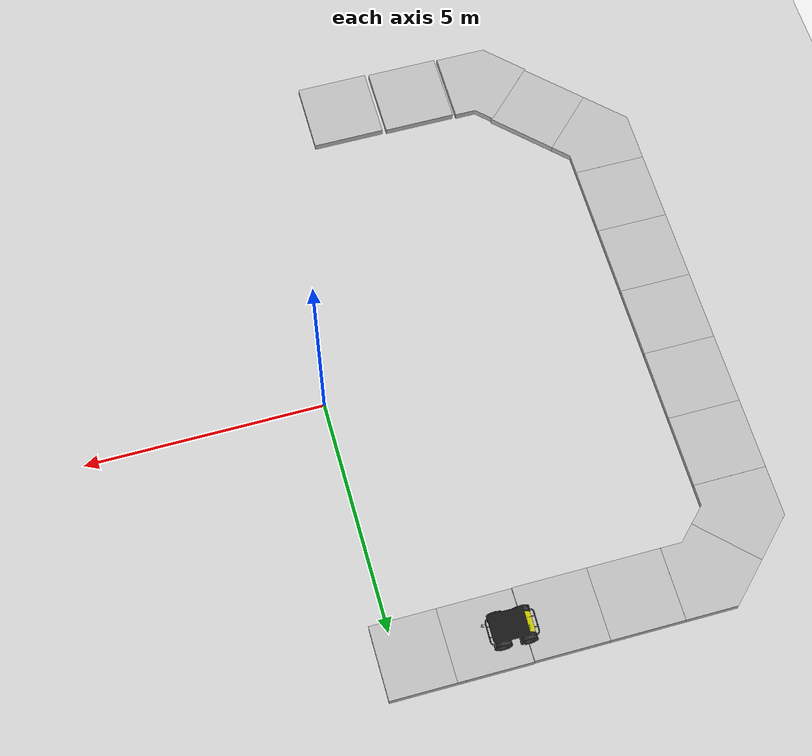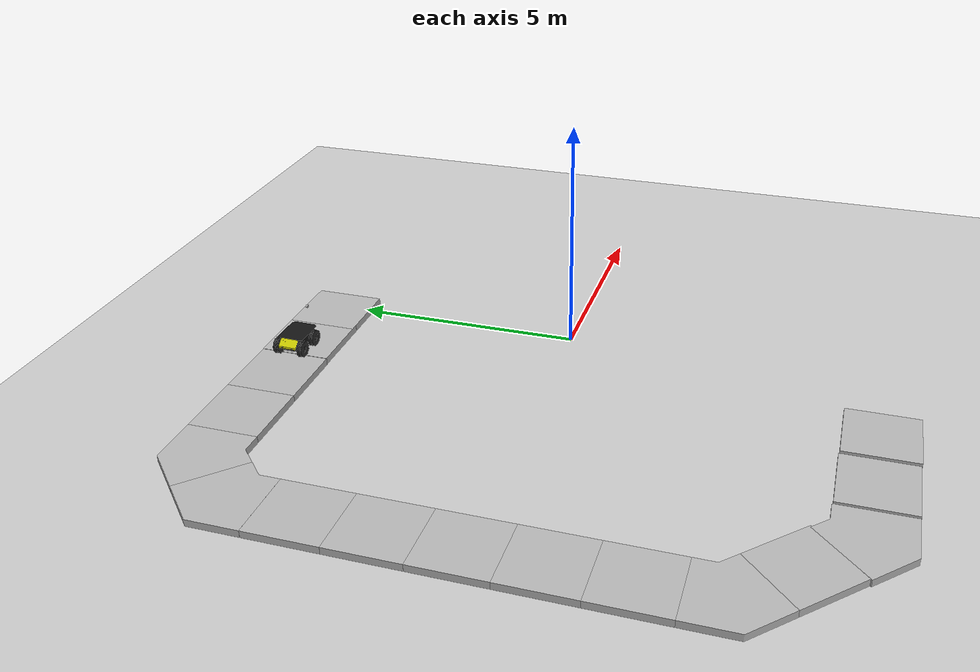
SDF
<sdf version="1.6">
 <world name="default">
  <model name="ground_plane">
   <static>1</static>
   <link name="link">
    <collision name="collision">
     <geometry><plane><normal>0 0 1</normal><size>100 100</size></plane></geometry>
     <surface>
      <contact><collide_bitmask>65535</collide_bitmask></contact>
      <friction><ode><mu>100</mu><mu2>50</mu2></ode></friction>
     </surface>
    </collision>
    <visual name="visual">
     <cast_shadows>0</cast_shadows>
     <geometry><plane><normal>0 0 1</normal><size>100 100</size></plane></geometry>
     <material>
      <script><uri>file://media/materials/scripts/gazebo.material</uri><name>Gazebo/Grey</name></script>
     </material>
    </visual>
   </link>
  </model>
  <model name="walkway_metal_45">
   <static>1</static>
   <link name="link">
    <collision name="collision">
     <pose>0 0.538815 0.076075 0 -0 0</pose>
     <geometry><box><size>1.524 1.07763 0.15215</size></box></geometry>
    </collision>
    <collision name="collision2">
     <pose>0.15793 0.92 0.076075 0 0 -0.785398</pose>
     <geometry><box><size>1.524 1.07763 0.15215</size></box></geometry>
    </collision>
    <visual name="visual">
     <geometry>
      <mesh><scale>0.001 0.001 0.001</scale><uri>model://walkway_metal_45/meshes/mesh.obj</uri></mesh>
     </geometry>
    </visual>
   </link>
   <pose>-7.41453 3.73485 -0.000254 0 -0 0</pose>
  </model>
  <model name="walkway_metal_45_0">
   <static>1</static>
   <link name="link">
    <collision name="collision">
     <pose>0 0.538815 0.076075 0 -0 0</pose>
     <geometry><box><size>1.524 1.07763 0.15215</size></box></geometry>
    </collision>
    <collision name="collision2">
     <pose>0.15793 0.92 0.076075 0 0 -0.785398</pose>
     <geometry><box><size>1.524 1.07763 0.15215</size></box></geometry>
    </collision>
    <visual name="visual">
     <geometry>
      <mesh><scale>0.001 0.001 0.001</scale><uri>model://walkway_metal_45/meshes/mesh.obj</uri></mesh>
     </geometry>
    </visual>
   </link>
   <pose>-6.87552 5.03558 -0.000254 0 0 -0.785398</pose>
  </model>
  <model name="walkway_metal_straight">
   <static>1</static>
   <link name="link">
    <collision name="collision">
     <pose>0 0.762 0.076075 0 -0 0</pose>
     <geometry><box><size>1.524 1.524 0.15215</size></box></geometry>
    </collision>
    <visual name="visual">
     <geometry>
      <mesh><scale>0.001 0.001 0.001</scale><uri>model://walkway_metal_straight/meshes/mesh.obj</uri></mesh>
     </geometry>
    </visual>
   </link>
   <pose>-5.57462 5.5742 -0.000508 0 0 -1.5708</pose>
  </model>
  <model name="walkway_metal_straight_0">
   <static>1</static>
   <link name="link">
    <collision name="collision">
     <pose>0 0.762 0.076075 0 -0 0</pose>
     <geometry><box><size>1.524 1.524 0.15215</size></box></geometry>
    </collision>
    <visual name="visual">
     <geometry>
      <mesh><scale>0.001 0.001 0.001</scale><uri>model://walkway_metal_straight/meshes/mesh.obj</uri></mesh>
     </geometry>
    </visual>
   </link>
   <pose>-2.52662 5.5742 -0.000508 0 -0 1.5708</pose>
  </model>
  <model name="walkway_metal_straight_1">
   <static>1</static>
   <link name="link">
    <collision name="collision">
     <pose>0 0.762 0.076075 0 -0 0</pose>
     <geometry><box><size>1.524 1.524 0.15215</size></box></geometry>
    </collision>
    <visual name="visual">
     <geometry>
      <mesh><scale>0.001 0.001 0.001</scale><uri>model://walkway_metal_straight/meshes/mesh.obj</uri></mesh>
     </geometry>
    </visual>
   </link>
   <pose>-2.51644 5.58382 -0.000508 0 0 -1.5708</pose>
  </model>
  <model name="walkway_metal_straight_2">
   <static>1</static>
   <link name="link">
    <collision name="collision">
     <pose>0 0.762 0.076075 0 -0 0</pose>
     <geometry><box><size>1.524 1.524 0.15215</size></box></geometry>
    </collision>
    <visual name="visual">
     <geometry>
      <mesh><scale>0.001 0.001 0.001</scale><uri>model://walkway_metal_straight/meshes/mesh.obj</uri></mesh>
     </geometry>
    </visual>
   </link>
   <pose>-1.16667 5.58386 -0.000508 0 0 -1.5708</pose>
  </model>
  <model name="walkway_metal_straight_10">
   <static>1</static>
   <link name="link">
    <collision name="collision">
     <pose>0 0.762 0.076075 0 -0 0</pose>
     <geometry><box><size>1.524 1.524 0.15215</size></box></geometry>
    </collision>
    <visual name="visual">
     <geometry>
      <mesh><scale>0.001 0.001 0.001</scale><uri>model://walkway_metal_straight/meshes/mesh.obj</uri></mesh>
     </geometry>
    </visual>
   </link>
   <pose>-1.34117 -6.84665 -0.000508 0 -0 1.5708</pose>
  </model>
  <model name="walkway_metal_straight_11">
   <static>1</static>
   <link name="link">
    <collision name="collision">
     <pose>0 0.762 0.076075 0 -0 0</pose>
     <geometry><box><size>1.524 1.524 0.15215</size></box></geometry>
    </collision>
    <visual name="visual">
     <geometry>
      <mesh><scale>0.001 0.001 0.001</scale><uri>model://walkway_metal_straight/meshes/mesh.obj</uri></mesh>
     </geometry>
    </visual>
   </link>
   <pose>-2.95228 -6.825 -0.000508 0 -0 1.5708</pose>
  </model>
  <model name="walkway_metal_45_11">
   <static>1</static>
   <link name="link">
    <collision name="collision">
     <pose>0 0.538815 0.076075 0 -0 0</pose>
     <geometry><box><size>1.524 1.07763 0.15215</size></box></geometry>
    </collision>
    <collision name="collision2">
     <pose>0.15793 0.92 0.076075 0 0 -0.785398</pose>
     <geometry><box><size>1.524 1.07763 0.15215</size></box></geometry>
    </collision>
    <visual name="visual">
     <geometry>
      <mesh><scale>0.001 0.001 0.001</scale><uri>model://walkway_metal_45/meshes/mesh.obj</uri></mesh>
     </geometry>
    </visual>
   </link>
   <pose>-4.54162 -6.80321 -0.000254 0 -0 1.5708</pose>
  </model>
  <model name="walkway_metal_45_12">
   <static>1</static>
   <link name="link">
    <collision name="collision">
     <pose>0 0.538815 0.076075 0 -0 0</pose>
     <geometry><box><size>1.524 1.07763 0.15215</size></box></geometry>
    </collision>
    <collision name="collision2">
     <pose>0.15793 0.92 0.076075 0 0 -0.785398</pose>
     <geometry><box><size>1.524 1.07763 0.15215</size></box></geometry>
    </collision>
    <visual name="visual">
     <geometry>
      <mesh><scale>0.001 0.001 0.001</scale><uri>model://walkway_metal_45/meshes/mesh.obj</uri></mesh>
     </geometry>
    </visual>
   </link>
   <pose>-6.87643 -5.18658 -0.000254 0 -0 0.785402</pose>
  </model>
  <model name="walkway_metal_straight_12">
   <static>1</static>
   <link name="link">
    <collision name="collision">
     <pose>0 0.762 0.076075 0 -0 0</pose>
     <geometry><box><size>1.524 1.524 0.15215</size></box></geometry>
    </collision>
    <visual name="visual">
     <geometry>
      <mesh><scale>0.001 0.001 0.001</scale><uri>model://walkway_metal_straight/meshes/mesh.obj</uri></mesh>
     </geometry>
    </visual>
   </link>
   <pose>-5.7988 -6.2642 -0.000508 0 -0 0.785402</pose>
  </model>
  <model name="walkway_metal_straight_13">
   <static>1</static>
   <link name="link">
    <collision name="collision">
     <pose>0 0.762 0.076075 0 -0 0</pose>
     <geometry><box><size>1.524 1.524 0.15215</size></box></geometry>
    </collision>
    <visual name="visual">
     <geometry>
      <mesh><scale>0.001 0.001 0.001</scale><uri>model://walkway_metal_straight/meshes/mesh.obj</uri></mesh>
     </geometry>
    </visual>
   </link>
   <pose>-7.41505 -3.88568 -0.000508 0 -0 4e-06</pose>
  </model>
  <model name="walkway_metal_straight_14">
   <static>1</static>
   <link name="link">
    <collision name="collision">
     <pose>0 0.762 0.076075 0 -0 0</pose>
     <geometry><box><size>1.524 1.524 0.15215</size></box></geometry>
    </collision>
    <visual name="visual">
     <geometry>
      <mesh><scale>0.001 0.001 0.001</scale><uri>model://walkway_metal_straight/meshes/mesh.obj</uri></mesh>
     </geometry>
    </visual>
   </link>
   <pose>-7.41506 -2.36168 -0.000508 0 -0 4e-06</pose>
  </model>
  <model name="walkway_metal_straight_15">
   <static>1</static>
   <link name="link">
    <collision name="collision">
     <pose>0 0.762 0.076075 0 -0 0</pose>
     <geometry><box><size>1.524 1.524 0.15215</size></box></geometry>
    </collision>
    <visual name="visual">
     <geometry>
      <mesh><scale>0.001 0.001 0.001</scale><uri>model://walkway_metal_straight/meshes/mesh.obj</uri></mesh>
     </geometry>
    </visual>
   </link>
   <pose>-7.41507 -0.837679 -0.000508 0 -0 4e-06</pose>
  </model>
  <model name="walkway_metal_straight_16">
   <static>1</static>
   <link name="link">
    <collision name="collision">
     <pose>0 0.762 0.076075 0 -0 0</pose>
     <geometry><box><size>1.524 1.524 0.15215</size></box></geometry>
    </collision>
    <visual name="visual">
     <geometry>
      <mesh><scale>0.001 0.001 0.001</scale><uri>model://walkway_metal_straight/meshes/mesh.obj</uri></mesh>
     </geometry>
    </visual>
   </link>
   <pose>-7.41507 0.686321 -0.000508 0 -0 4e-06</pose>
  </model>
  <model name="walkway_metal_straight_17">
   <static>1</static>
   <link name="link">
    <collision name="collision">
     <pose>0 0.762 0.076075 0 -0 0</pose>
     <geometry><box><size>1.524 1.524 0.15215</size></box></geometry>
    </collision>
    <visual name="visual">
     <geometry>
      <mesh><scale>0.001 0.001 0.001</scale><uri>model://walkway_metal_straight/meshes/mesh.obj</uri></mesh>
     </geometry>
    </visual>
   </link>
   <pose>-7.41508 2.21032 -0.000508 0 -0 4e-06</pose>
  </model>
  <model name="/">
   <link name="base_link">
    <inertial>
     <pose>-0.00065 -0.085 0.062 0 -0 0</pose>
     <mass>46.034</mass>
     <inertia>
      <ixx>0.602204</ixx>
      <ixy>-0.0236405</ixy>
      <ixz>-0.119703</ixz>
      <iyy>1.73861</iyy>
      <iyz>-0.00154446</iyz>
      <izz>2.0296</izz>
     </inertia>
    </inertial>
    <collision name="base_link_collision">
     <pose>0 0 0.061875 0 -0 0</pose>
     <geometry><box><size>0.9874 0.5709 0.12375</size></box></geometry>
    </collision>
    <collision name="base_link_collision_1">
     <pose>0 0 0.185625 0 -0 0</pose>
     <geometry><box><size>0.78992 0.5709 0.12375</size></box></geometry>
    </collision>
    <collision name="base_link_fixed_joint_lump__top_plate_link_collision_2">
     <pose>0.0812 0 0.245 0 -0 0</pose>
     <geometry>
      <mesh>
       <scale>1 1 1</scale>
       <uri>/home/daria/catkin_ws/src/husky/husky_description/meshes/top_plate.dae</uri>
      </mesh>
     </geometry>
    </collision>
    <collision name="base_link_fixed_joint_lump__top_plate_link_collision_3">
     <pose>0.0812 0 0.245 0 -0 0</pose>
     <geometry><box><size>0.32 0.41 0.09</size></box></geometry>
    </collision>
    <visual name="base_link_visual">
     <geometry>
      <mesh>
       <scale>1 1 1</scale>
       <uri>/home/daria/catkin_ws/src/husky/husky_description/meshes/base_link.dae</uri>
      </mesh>
     </geometry>
    </visual>
    <visual name="base_link_fixed_joint_lump__camera_box_visual_1">
     <pose>0.6 0 0.6 0 1 0</pose>
     <geometry><box><size>0.05 0.05 0.05</size></box></geometry>
     <material><script><uri>__default__</uri><name>__default__</name></script></material>
    </visual>
    <visual name="base_link_fixed_joint_lump__front_bumper_link_visual_2">
     <pose>0.48 0 0.091 0 -0 0</pose>
     <geometry>
      <mesh>
       <scale>1 1 1</scale>
       <uri>/home/daria/catkin_ws/src/husky/husky_description/meshes/bumper.dae</uri>
      </mesh>
     </geometry>
    </visual>
    <visual name="base_link_fixed_joint_lump__rear_bumper_link_visual_3">
     <pose>-0.48 0 0.091 0 -0 3.14159</pose>
     <geometry>
      <mesh>
       <scale>1 1 1</scale>
       <uri>/home/daria/catkin_ws/src/husky/husky_description/meshes/bumper.dae</uri>
      </mesh>
     </geometry>
    </visual>
    <visual name="base_link_fixed_joint_lump__top_chassis_link_visual_4">
     <geometry>
      <mesh>
       <scale>1 1 1</scale>
       <uri>/home/daria/catkin_ws/src/husky/husky_description/meshes/top_chassis.dae</uri>
      </mesh>
     </geometry>
    </visual>
    <visual name="base_link_fixed_joint_lump__top_plate_link_visual_5">
     <pose>0.0812 0 0.245 0 -0 0</pose>
     <geometry>
      <mesh>
       <scale>1 1 1</scale>
       <uri>/home/daria/catkin_ws/src/husky/husky_description/meshes/top_plate.dae</uri>
      </mesh>
     </geometry>
    </visual>
    <visual name="base_link_fixed_joint_lump__user_rail_link_visual_6">
     <pose>0.272 0 0.245 0 -0 0</pose>
     <geometry>
      <mesh>
       <scale>1 1 1</scale>
       <uri>/home/daria/catkin_ws/src/husky/husky_description/meshes/user_rail.dae</uri>
      </mesh>
     </geometry>
    </visual>
    <sensor name="camera1" type="camera">
     <update_rate>30</update_rate>
     <camera name="head">
      <horizontal_fov>1.2</horizontal_fov>
      <image><width>800</width><height>800</height><format>R8G8B8</format></image>
      <clip><near>0.02</near><far>300</far></clip>
      <noise><type>gaussian</type><mean>0</mean><stddev>0.007</stddev></noise>
     </camera>
     <plugin name="camera_controller" filename="libgazebo_ros_camera.so">
      <alwaysOn>1</alwaysOn>
      <updateRate>0.0</updateRate>
      <cameraName>husky/camera1</cameraName>
      <imageTopicName>image_raw</imageTopicName>
      <cameraInfoTopicName>camera_info</cameraInfoTopicName>
      <frameName>camera_box</frameName>
      <hackBaseline>0.07</hackBaseline>
      <distortionK1>0.0</distortionK1>
      <distortionK2>0.0</distortionK2>
      <distortionK3>0.0</distortionK3>
      <distortionT1>0.0</distortionT1>
      <distortionT2>0.0</distortionT2>
      <robotNamespace>/</robotNamespace>
     </plugin>
     <pose>0.6 0 0.6 0 1 0</pose>
    </sensor>
   </link>
   <link name="front_left_wheel_link">
    <pose>0.256 0.2854 0.03282 0 -0 0</pose>
    <inertial>
     <mass>2.637</mass>
     <inertia><ixx>0.02467</ixx><ixy>0</ixy><ixz>0</ixz><iyy>0.04411</iyy><iyz>0</iyz><izz>0.02467</izz></inertia>
    </inertial>
    <collision name="front_left_wheel_link_collision">
     <pose>0 0 0 1.57079 -0 0</pose>
     <geometry><cylinder><length>0.1143</length><radius>0.1651</radius></cylinder></geometry>
     <surface>
      <contact><ode><kp>1e+07</kp><kd>1</kd></ode></contact>
      <friction><ode><mu>1</mu><mu2>1</mu2><fdir1>1 0 0</fdir1></ode></friction>
     </surface>
    </collision>
    <visual name="front_left_wheel_link_visual">
     <geometry>
      <mesh><scale>1 1 1</scale><uri>/home/daria/catkin_ws/src/husky/husky_description/meshes/wheel.dae</uri></mesh>
     </geometry>
     <material><script><uri>__default__</uri><name>__default__</name></script></material>
    </visual>
   </link>
   <joint name="front_left_wheel" type="revolute">
    <child>front_left_wheel_link</child>
    <parent>base_link</parent>
    <axis>
     <xyz>0 1 0</xyz>
     <limit><lower>-1e+16</lower><upper>1e+16</upper></limit>
     <dynamics><spring_reference>0</spring_reference><spring_stiffness>0</spring_stiffness></dynamics>
     <use_parent_model_frame>1</use_parent_model_frame>
    </axis>
   </joint>
   <link name="front_right_wheel_link">
    <pose>0.256 -0.2854 0.03282 0 -0 0</pose>
    <inertial>
     <mass>2.637</mass>
     <inertia><ixx>0.02467</ixx><ixy>0</ixy><ixz>0</ixz><iyy>0.04411</iyy><iyz>0</iyz><izz>0.02467</izz></inertia>
    </inertial>
    <collision name="front_right_wheel_link_collision">
     <pose>0 0 0 1.57079 -0 0</pose>
     <geometry><cylinder><length>0.1143</length><radius>0.1651</radius></cylinder></geometry>
     <surface>
      <contact><ode><kp>1e+07</kp><kd>1</kd></ode></contact>
      <friction><ode><mu>1</mu><mu2>1</mu2><fdir1>1 0 0</fdir1></ode></friction>
     </surface>
    </collision>
    <visual name="front_right_wheel_link_visual">
     <geometry>
      <mesh><scale>1 1 1</scale><uri>/home/daria/catkin_ws/src/husky/husky_description/meshes/wheel.dae</uri></mesh>
     </geometry>
     <material><script><uri>__default__</uri><name>__default__</name></script></material>
    </visual>
   </link>
   <joint name="front_right_wheel" type="revolute">
    <child>front_right_wheel_link</child>
    <parent>base_link</parent>
    <axis>
     <xyz>0 1 0</xyz>
     <limit><lower>-1e+16</lower><upper>1e+16</upper></limit>
     <dynamics><spring_reference>0</spring_reference><spring_stiffness>0</spring_stiffness></dynamics>
     <use_parent_model_frame>1</use_parent_model_frame>
    </axis>
   </joint>
   <link name="rear_left_wheel_link">
    <pose>-0.256 0.2854 0.03282 0 -0 0</pose>
    <inertial>
     <mass>2.637</mass>
     <inertia><ixx>0.02467</ixx><ixy>0</ixy><ixz>0</ixz><iyy>0.04411</iyy><iyz>0</iyz><izz>0.02467</izz></inertia>
    </inertial>
    <collision name="rear_left_wheel_link_collision">
     <pose>0 0 0 1.57079 -0 0</pose>
     <geometry><cylinder><length>0.1143</length><radius>0.1651</radius></cylinder></geometry>
     <surface>
      <contact><ode><kp>1e+07</kp><kd>1</kd></ode></contact>
      <friction><ode><mu>1</mu><mu2>1</mu2><fdir1>1 0 0</fdir1></ode></friction>
     </surface>
    </collision>
    <visual name="rear_left_wheel_link_visual">
     <geometry>
      <mesh><scale>1 1 1</scale><uri>/home/daria/catkin_ws/src/husky/husky_description/meshes/wheel.dae</uri></mesh>
     </geometry>
     <material><script><uri>__default__</uri><name>__default__</name></script></material>
    </visual>
   </link>
   <joint name="rear_left_wheel" type="revolute">
    <child>rear_left_wheel_link</child>
    <parent>base_link</parent>
    <axis>
     <xyz>0 1 0</xyz>
     <limit><lower>-1e+16</lower><upper>1e+16</upper></limit>
     <dynamics><spring_reference>0</spring_reference><spring_stiffness>0</spring_stiffness></dynamics>
     <use_parent_model_frame>1</use_parent_model_frame>
    </axis>
   </joint>
   <link name="rear_right_wheel_link">
    <pose>-0.256 -0.2854 0.03282 0 -0 0</pose>
    <inertial>
     <mass>2.637</mass>
     <inertia><ixx>0.02467</ixx><ixy>0</ixy><ixz>0</ixz><iyy>0.04411</iyy><iyz>0</iyz><izz>0.02467</izz></inertia>
    </inertial>
    <collision name="rear_right_wheel_link_collision">
     <pose>0 0 0 1.57079 -0 0</pose>
     <geometry><cylinder><length>0.1143</length><radius>0.1651</radius></cylinder></geometry>
     <surface>
      <contact><ode><kp>1e+07</kp><kd>1</kd></ode></contact>
      <friction><ode><mu>1</mu><mu2>1</mu2><fdir1>1 0 0</fdir1></ode></friction>
     </surface>
    </collision>
    <visual name="rear_right_wheel_link_visual">
     <geometry>
      <mesh><scale>1 1 1</scale><uri>/home/daria/catkin_ws/src/husky/husky_description/meshes/wheel.dae</uri></mesh>
     </geometry>
     <material><script><uri>__default__</uri><name>__default__</name></script></material>
    </visual>
   </link>
   <joint name="rear_right_wheel" type="revolute">
    <child>rear_right_wheel_link</child>
    <parent>base_link</parent>
    <axis>
     <xyz>0 1 0</xyz>
     <limit><lower>-1e+16</lower><upper>1e+16</upper></limit>
     <dynamics><spring_reference>0</spring_reference><spring_stiffness>0</spring_stiffness></dynamics>
     <use_parent_model_frame>1</use_parent_model_frame>
    </axis>
   </joint>
   <plugin name="gazebo_ros_control" filename="libgazebo_ros_control.so">
    <robotNamespace>/</robotNamespace>
   </plugin>
   <plugin name="imu_controller" filename="libhector_gazebo_ros_imu.so">
    <robotNamespace>/</robotNamespace>
    <updateRate>50.0</updateRate>
    <bodyName>base_link</bodyName>
    <topicName>imu/data</topicName>
    <accelDrift>0.005 0.005 0.005</accelDrift>
    <accelGaussianNoise>0.005 0.005 0.005</accelGaussianNoise>
    <rateDrift>0.005 0.005 0.005</rateDrift>
    <rateGaussianNoise>0.005 0.005 0.005</rateGaussianNoise>
    <headingDrift>0.005</headingDrift>
    <headingGaussianNoise>0.005</headingGaussianNoise>
   </plugin>
   <static>0</static>
   <plugin name="gps_controller" filename="libhector_gazebo_ros_gps.so">
    <robotNamespace>/</robotNamespace>
    <updateRate>40</updateRate>
    <bodyName>base_link</bodyName>
    <frameId>base_link</frameId>
    <topicName>navsat/fix</topicName>
    <velocityTopicName>navsat/vel</velocityTopicName>
    <referenceLatitude>49.9</referenceLatitude>
    <referenceLongitude>8.9</referenceLongitude>
    <referenceHeading>0</referenceHeading>
    <referenceAltitude>0</referenceAltitude>
    <drift>0.0001 0.0001 0.0001</drift>
   </plugin>
   <pose>-2.27689 5.63527 0.283915 4e-06 -0 -0.022919</pose>
  </model>
 </world>
</sdf>
